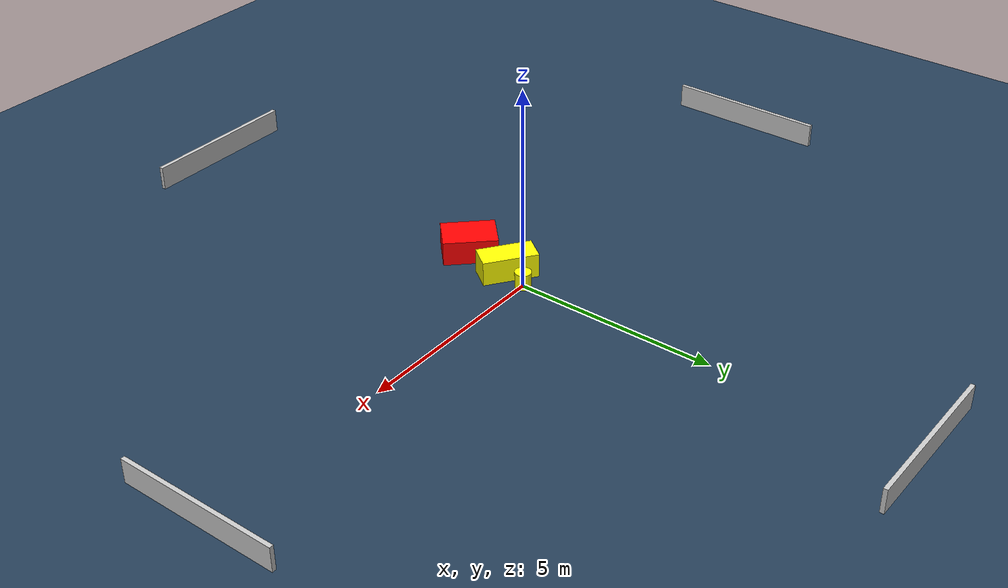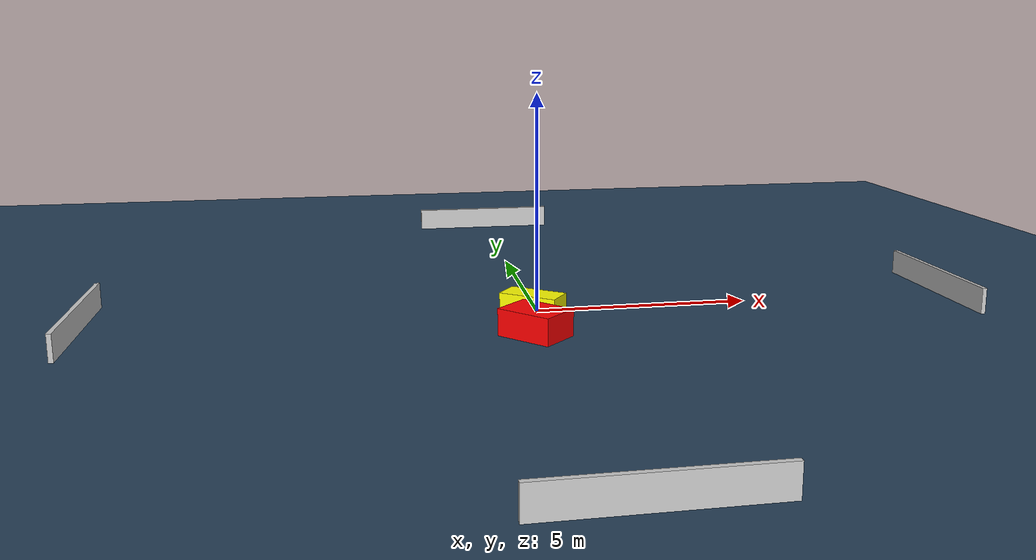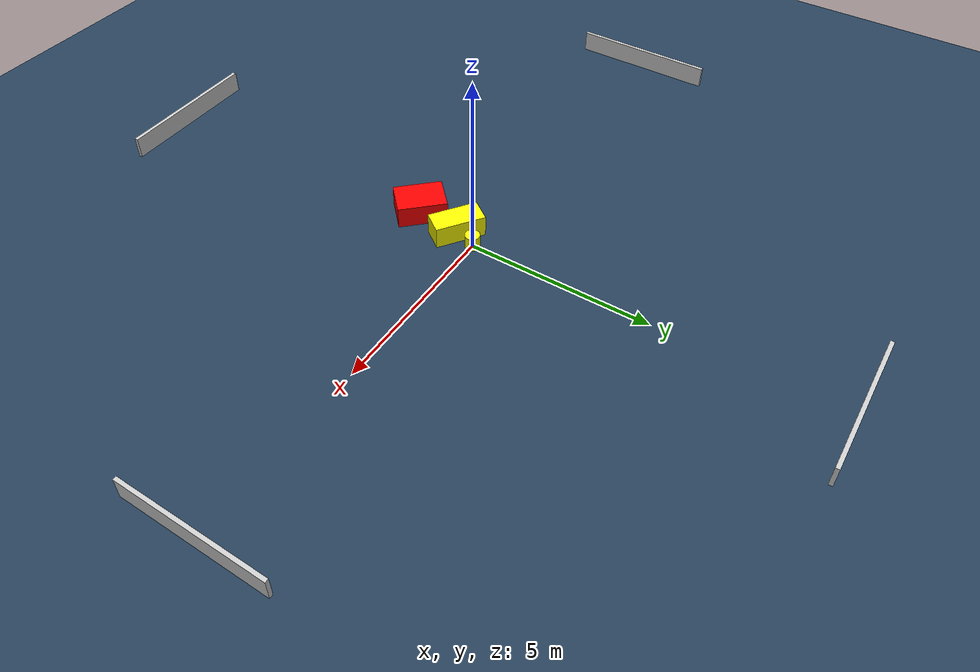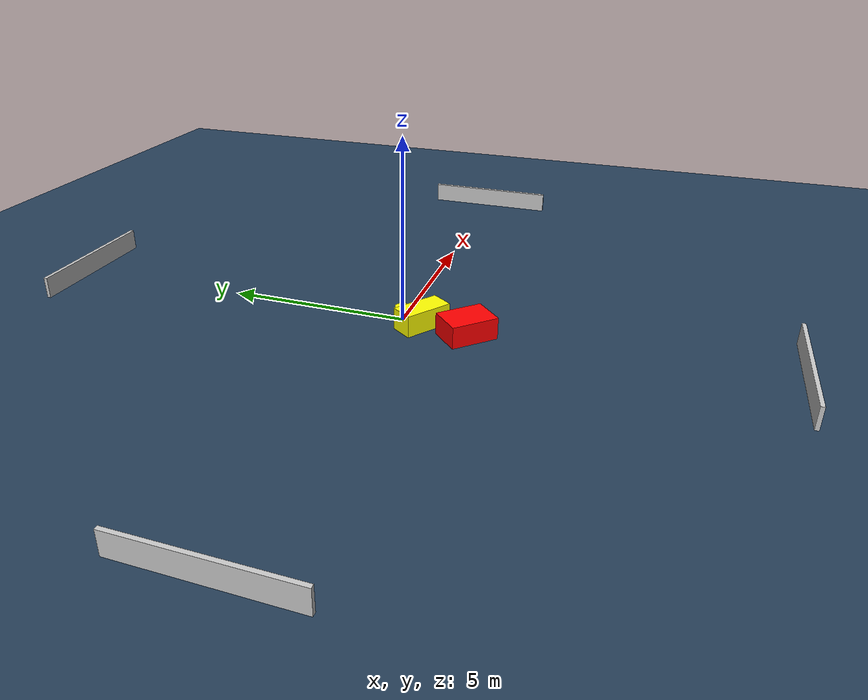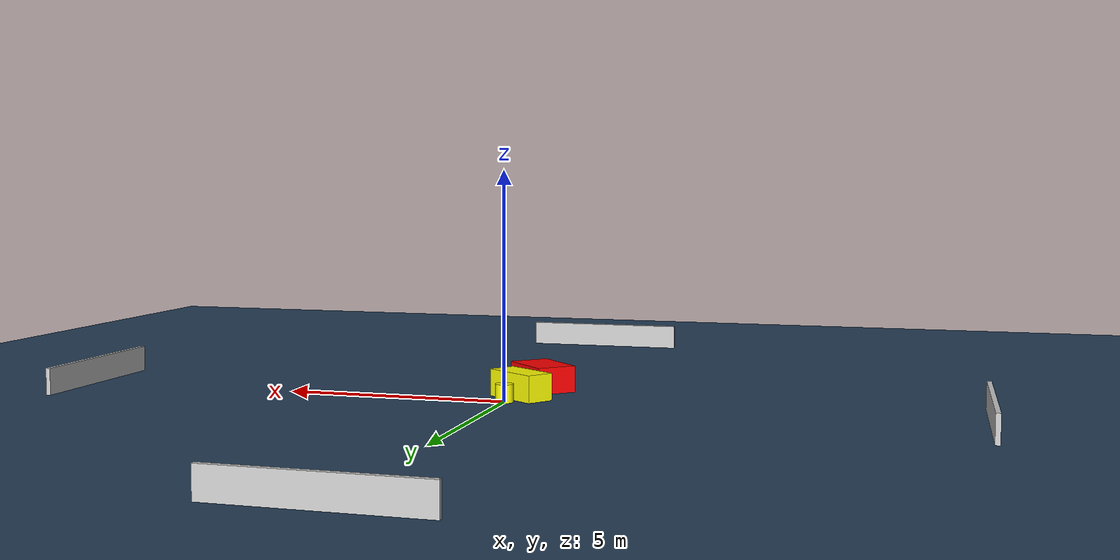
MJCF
<?xml version="1.0" ?>
<mujoco model="generated_environment">
  <option timestep="0.01" integrator="RK4" cone="elliptic"/>
  <default>
    <geom density="1"/>
  </default>
  <asset>
    <texture builtin="gradient" height="3072" name="skybox" rgb1="0.3 0.5 0.7" rgb2="0 0 0" type="skybox" width="512"/>
    <texture builtin="checker" height="300" name="groundplane" rgb1="0.2 0.3 0.4" rgb2="0.1 0.2 0.3" type="2d" width="300"/>
    <material name="groundplane" reflectance="0.2" texrepeat="5 5" texture="groundplane"/>
  </asset>
  <worldbody>
    <light dir="0 0 -1" directional="true" pos="0 0 1.5"/>
    <geom condim="3" friction="0.5 0.005 0.001" material="groundplane" name="floor" pos="0 0 0" size="0 0 0.05" type="plane"/>
    <body name="walls">
      <geom name="wall_1" condim="4" pos="-10.0 0.0 0.3" rgba="0.800000011920929 0.800000011920929 0.800000011920929 1.0" size="0.05 2.0 0.3" type="box"/>
      <geom name="wall_2" condim="4" pos="10.0 0.0 0.3" rgba="0.800000011920929 0.800000011920929 0.800000011920929 1.0" size="0.05 2.0 0.3" type="box"/>
      <geom name="wall_3" condim="4" pos="0.0 -10.0 0.3" rgba="0.800000011920929 0.800000011920929 0.800000011920929 1.0" size="2.0 0.05 0.3" type="box"/>
      <geom name="wall_4" condim="4" pos="0.0 10.0 0.3" rgba="0.800000011920929 0.800000011920929 0.800000011920929 1.0" size="2.0 0.05 0.3" type="box"/>
    </body>
    <body name="robot">
      <joint name="joint_x" type="slide" pos="0 0 0" axis="1 0 0"/>
      <joint name="joint_y" type="slide" pos="0 0 0" axis="0 1 0"/>
      <geom name="robot" type="cylinder" pos="0.0 0.0 0.2" size="0.2 0.2 0.0" mass="5.0" friction="1.0 0.005 0.0001" condim="4" rgba="1.0 1.0 0.0 1.0"/>
    </body>
    <body name="obstacle_1_movable">
      <geom name="obstacle_1_movable" condim="4" pos="-0.19549201581497685 -0.6083900707455907 0.3" euler="0 0 54.3358729103839" friction="0.0 0.005 0.001" rgba="1.0 1.0 0.0 1.0" size="0.3211259921510111 0.6765391235515523 0.3" type="box" mass="0.1"/>
      <joint type="free"/>
    </body>
    <body name="obstacle_2_static">
      <geom name="obstacle_2_static" condim="4" pos="-0.3539065838936628 -1.8724456104518161 0.3" euler="0 0 223.84954804720542" friction="0.0 0.005 0.001" rgba="1.0 0.0 0.0 1.0" size="0.4675569574739081 0.6575232556624746 0.3" type="box"/>
    </body>
  </worldbody>
  <actuator>
    <motor name="actuator_x" joint="joint_x" gear="1" ctrlrange="-1 1"/>
    <motor name="actuator_y" joint="joint_y" gear="1" ctrlrange="-1 1"/>
  </actuator>
</mujoco>
